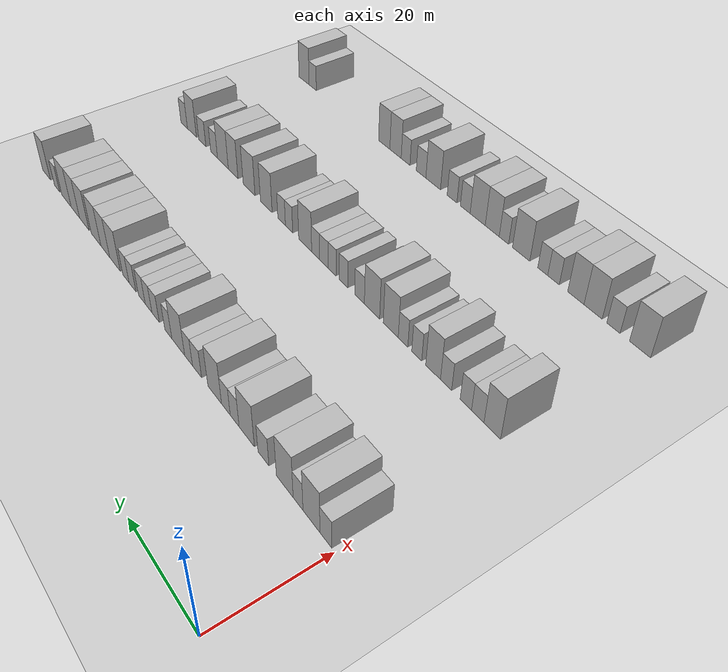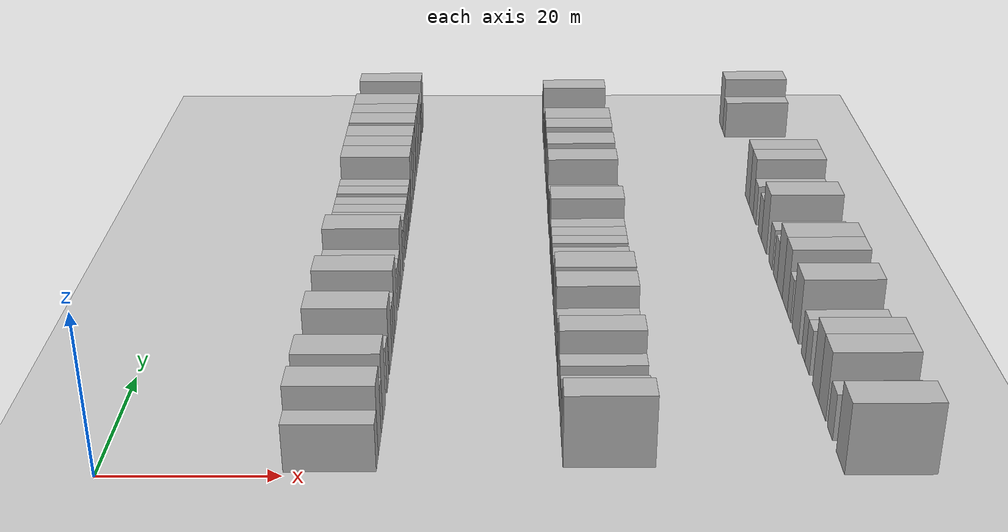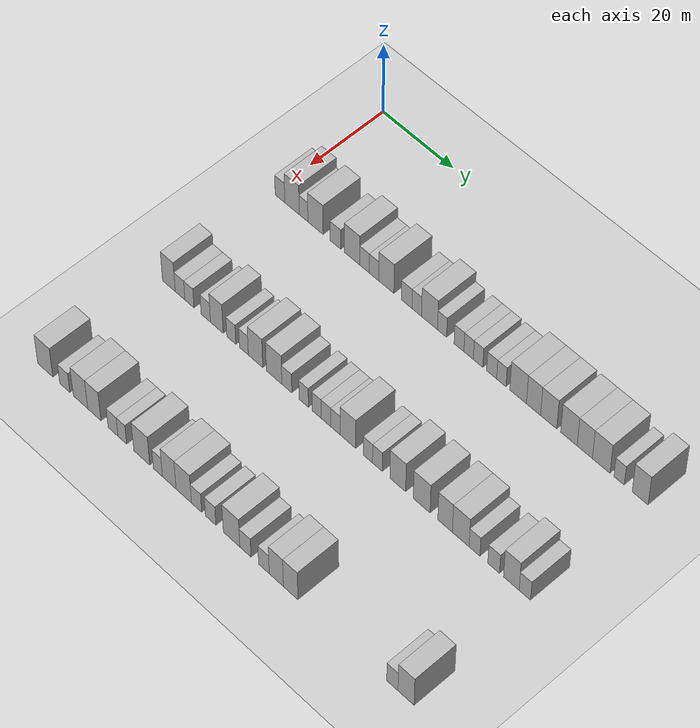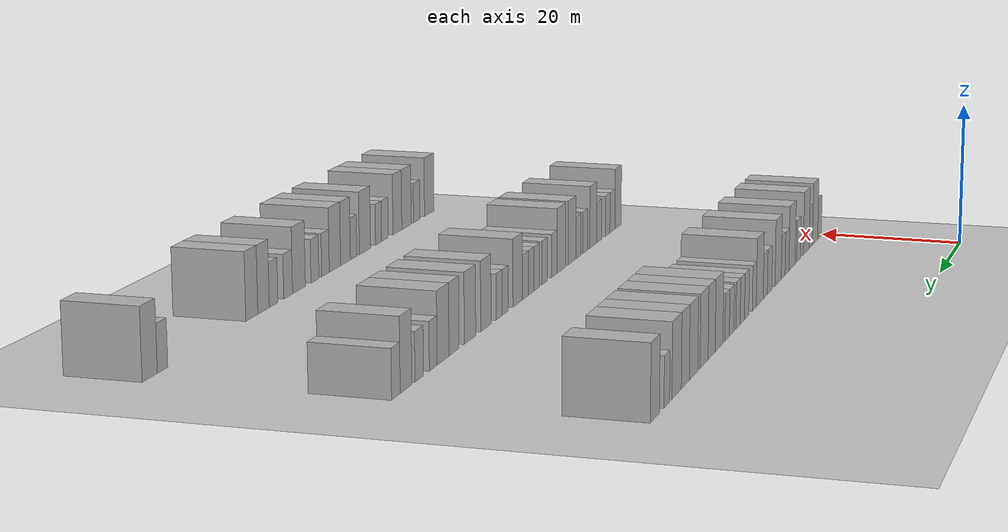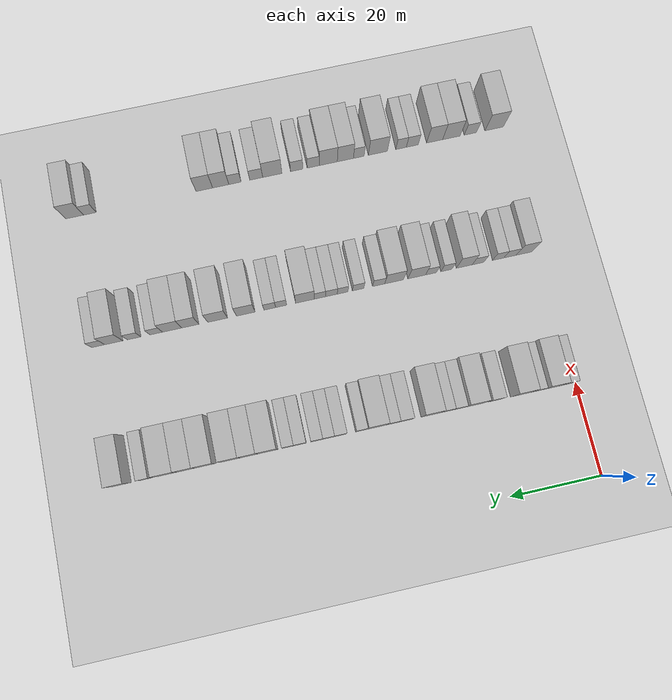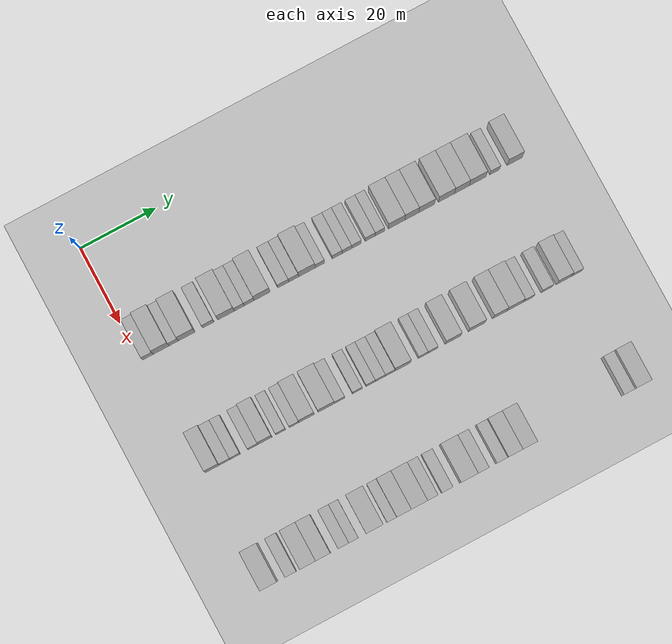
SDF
<sdf version="1.6">
 <world name="default">
  <include>
   <name>ground_plane_2</name>
   <uri>model://HANNAS_ground_plane</uri>
   <pose>100 0 0  0 0 0</pose>
  </include>
  <model name="building_71">
   <static>1</static>
   <pose>25.0000 2.1148 0 0.000000 0.000000 0.000000</pose>
   <link name="link">
    <pose>0 0 3.00 0 0 0</pose>
    <collision name="collision"><geometry><box><size>10.0000 2.8006 6.0000</size></box></geometry></collision>
    <visual name="visual">
     <cast_shadows>0</cast_shadows>
     <geometry><box><size>10.0000 2.8006 6.0000</size></box></geometry>
     <material>
      <script>
       <uri>model://HANNAS_wall/materials/scripts</uri>
       <uri>model://HANNAS_wall/materials/textures</uri>
       <name>vrc/HANNAS_wall</name>
      </script>
     </material>
    </visual>
   </link>
  </model>
  <model name="building_72">
   <static>1</static>
   <pose>25.0000 5.5817 0 0.000000 0.000000 0.000000</pose>
   <link name="link">
    <pose>0 0 4.50 0 0 0</pose>
    <collision name="collision"><geometry><box><size>10.0000 4.1332 9.0000</size></box></geometry></collision>
    <visual name="visual">
     <cast_shadows>0</cast_shadows>
     <geometry><box><size>10.0000 4.1332 9.0000</size></box></geometry>
     <material>
      <script>
       <uri>model://HANNAS_wall/materials/scripts</uri>
       <uri>model://HANNAS_wall/materials/textures</uri>
       <name>vrc/HANNAS_wall</name>
      </script>
     </material>
    </visual>
   </link>
  </model>
  <model name="building_73">
   <static>1</static>
   <pose>25.0000 8.8795 0 0.000000 0.000000 0.000000</pose>
   <link name="link">
    <pose>0 0 3.00 0 0 0</pose>
    <collision name="collision"><geometry><box><size>10.0000 2.4625 6.0000</size></box></geometry></collision>
    <visual name="visual">
     <cast_shadows>0</cast_shadows>
     <geometry><box><size>10.0000 2.4625 6.0000</size></box></geometry>
     <material>
      <script>
       <uri>model://HANNAS_wall/materials/scripts</uri>
       <uri>model://HANNAS_wall/materials/textures</uri>
       <name>vrc/HANNAS_wall</name>
      </script>
     </material>
    </visual>
   </link>
  </model>
  <model name="building_74">
   <static>1</static>
   <pose>25.0000 12.2830 0 0.000000 0.000000 0.000000</pose>
   <link name="link">
    <pose>0 0 4.50 0 0 0</pose>
    <collision name="collision"><geometry><box><size>10.0000 4.3445 9.0000</size></box></geometry></collision>
    <visual name="visual">
     <cast_shadows>0</cast_shadows>
     <geometry><box><size>10.0000 4.3445 9.0000</size></box></geometry>
     <material>
      <script>
       <uri>model://HANNAS_wall/materials/scripts</uri>
       <uri>model://HANNAS_wall/materials/textures</uri>
       <name>vrc/HANNAS_wall</name>
      </script>
     </material>
    </visual>
   </link>
  </model>
  <model name="building_75">
   <static>1</static>
   <pose>25.0000 17.9424 0 0.000000 0.000000 0.000000</pose>
   <link name="link">
    <pose>0 0 3.00 0 0 0</pose>
    <collision name="collision"><geometry><box><size>10.0000 2.9744 6.0000</size></box></geometry></collision>
    <visual name="visual">
     <cast_shadows>0</cast_shadows>
     <geometry><box><size>10.0000 2.9744 6.0000</size></box></geometry>
     <material>
      <script>
       <uri>model://HANNAS_wall/materials/scripts</uri>
       <uri>model://HANNAS_wall/materials/textures</uri>
       <name>vrc/HANNAS_wall</name>
      </script>
     </material>
    </visual>
   </link>
  </model>
  <model name="building_76">
   <static>1</static>
   <pose>25.0000 22.6018 0 0.000000 0.000000 0.000000</pose>
   <link name="link">
    <pose>0 0 4.50 0 0 0</pose>
    <collision name="collision"><geometry><box><size>10.0000 4.3443 9.0000</size></box></geometry></collision>
    <visual name="visual">
     <cast_shadows>0</cast_shadows>
     <geometry><box><size>10.0000 4.3443 9.0000</size></box></geometry>
     <material>
      <script>
       <uri>model://HANNAS_wall/materials/scripts</uri>
       <uri>model://HANNAS_wall/materials/textures</uri>
       <name>vrc/HANNAS_wall</name>
      </script>
     </material>
    </visual>
   </link>
  </model>
  <model name="building_77">
   <static>1</static>
   <pose>25.0000 26.0781 0 0.000000 0.000000 0.000000</pose>
   <link name="link">
    <pose>0 0 3.00 0 0 0</pose>
    <collision name="collision"><geometry><box><size>10.0000 2.6084 6.0000</size></box></geometry></collision>
    <visual name="visual">
     <cast_shadows>0</cast_shadows>
     <geometry><box><size>10.0000 2.6084 6.0000</size></box></geometry>
     <material>
      <script>
       <uri>model://HANNAS_wall/materials/scripts</uri>
       <uri>model://HANNAS_wall/materials/textures</uri>
       <name>vrc/HANNAS_wall</name>
      </script>
     </material>
    </visual>
   </link>
  </model>
  <model name="building_78">
   <static>1</static>
   <pose>25.0000 28.6798 0 0.000000 0.000000 0.000000</pose>
   <link name="link">
    <pose>0 0 3.00 0 0 0</pose>
    <collision name="collision"><geometry><box><size>10.0000 2.5950 6.0000</size></box></geometry></collision>
    <visual name="visual">
     <cast_shadows>0</cast_shadows>
     <geometry><box><size>10.0000 2.5950 6.0000</size></box></geometry>
     <material>
      <script>
       <uri>model://HANNAS_wall/materials/scripts</uri>
       <uri>model://HANNAS_wall/materials/textures</uri>
       <name>vrc/HANNAS_wall</name>
      </script>
     </material>
    </visual>
   </link>
  </model>
  <model name="building_79">
   <static>1</static>
   <pose>25.0000 32.0917 0 0.000000 0.000000 0.000000</pose>
   <link name="link">
    <pose>0 0 4.50 0 0 0</pose>
    <collision name="collision"><geometry><box><size>10.0000 4.2287 9.0000</size></box></geometry></collision>
    <visual name="visual">
     <cast_shadows>0</cast_shadows>
     <geometry><box><size>10.0000 4.2287 9.0000</size></box></geometry>
     <material>
      <script>
       <uri>model://HANNAS_wall/materials/scripts</uri>
       <uri>model://HANNAS_wall/materials/textures</uri>
       <name>vrc/HANNAS_wall</name>
      </script>
     </material>
    </visual>
   </link>
  </model>
  <model name="building_80">
   <static>1</static>
   <pose>25.0000 37.6726 0 0.000000 0.000000 0.000000</pose>
   <link name="link">
    <pose>0 0 3.00 0 0 0</pose>
    <collision name="collision"><geometry><box><size>10.0000 2.9331 6.0000</size></box></geometry></collision>
    <visual name="visual">
     <cast_shadows>0</cast_shadows>
     <geometry><box><size>10.0000 2.9331 6.0000</size></box></geometry>
     <material>
      <script>
       <uri>model://HANNAS_wall/materials/scripts</uri>
       <uri>model://HANNAS_wall/materials/textures</uri>
       <name>vrc/HANNAS_wall</name>
      </script>
     </material>
    </visual>
   </link>
  </model>
  <model name="building_81">
   <static>1</static>
   <pose>25.0000 40.4346 0 0.000000 0.000000 0.000000</pose>
   <link name="link">
    <pose>0 0 3.00 0 0 0</pose>
    <collision name="collision"><geometry><box><size>10.0000 2.5910 6.0000</size></box></geometry></collision>
    <visual name="visual">
     <cast_shadows>0</cast_shadows>
     <geometry><box><size>10.0000 2.5910 6.0000</size></box></geometry>
     <material>
      <script>
       <uri>model://HANNAS_wall/materials/scripts</uri>
       <uri>model://HANNAS_wall/materials/textures</uri>
       <name>vrc/HANNAS_wall</name>
      </script>
     </material>
    </visual>
   </link>
  </model>
  <model name="building_82">
   <static>1</static>
   <pose>25.0000 43.9173 0 0.000000 0.000000 0.000000</pose>
   <link name="link">
    <pose>0 0 4.50 0 0 0</pose>
    <collision name="collision"><geometry><box><size>10.0000 4.3743 9.0000</size></box></geometry></collision>
    <visual name="visual">
     <cast_shadows>0</cast_shadows>
     <geometry><box><size>10.0000 4.3743 9.0000</size></box></geometry>
     <material>
      <script>
       <uri>model://HANNAS_wall/materials/scripts</uri>
       <uri>model://HANNAS_wall/materials/textures</uri>
       <name>vrc/HANNAS_wall</name>
      </script>
     </material>
    </visual>
   </link>
  </model>
  <model name="building_83">
   <static>1</static>
   <pose>25.0000 47.3376 0 0.000000 0.000000 0.000000</pose>
   <link name="link">
    <pose>0 0 3.00 0 0 0</pose>
    <collision name="collision"><geometry><box><size>10.0000 2.4662 6.0000</size></box></geometry></collision>
    <visual name="visual">
     <cast_shadows>0</cast_shadows>
     <geometry><box><size>10.0000 2.4662 6.0000</size></box></geometry>
     <material>
      <script>
       <uri>model://HANNAS_wall/materials/scripts</uri>
       <uri>model://HANNAS_wall/materials/textures</uri>
       <name>vrc/HANNAS_wall</name>
      </script>
     </material>
    </visual>
   </link>
  </model>
  <model name="building_84">
   <static>1</static>
   <pose>25.0000 51.9042 0 0.000000 0.000000 0.000000</pose>
   <link name="link">
    <pose>0 0 3.00 0 0 0</pose>
    <collision name="collision"><geometry><box><size>10.0000 2.6670 6.0000</size></box></geometry></collision>
    <visual name="visual">
     <cast_shadows>0</cast_shadows>
     <geometry><box><size>10.0000 2.6670 6.0000</size></box></geometry>
     <material>
      <script>
       <uri>model://HANNAS_wall/materials/scripts</uri>
       <uri>model://HANNAS_wall/materials/textures</uri>
       <name>vrc/HANNAS_wall</name>
      </script>
     </material>
    </visual>
   </link>
  </model>
  <model name="building_85">
   <static>1</static>
   <pose>25.0000 54.4840 0 0.000000 0.000000 0.000000</pose>
   <link name="link">
    <pose>0 0 3.00 0 0 0</pose>
    <collision name="collision"><geometry><box><size>10.0000 2.4926 6.0000</size></box></geometry></collision>
    <visual name="visual">
     <cast_shadows>0</cast_shadows>
     <geometry><box><size>10.0000 2.4926 6.0000</size></box></geometry>
     <material>
      <script>
       <uri>model://HANNAS_wall/materials/scripts</uri>
       <uri>model://HANNAS_wall/materials/textures</uri>
       <name>vrc/HANNAS_wall</name>
      </script>
     </material>
    </visual>
   </link>
  </model>
  <model name="building_86">
   <static>1</static>
   <pose>25.0000 57.0016 0 0.000000 0.000000 0.000000</pose>
   <link name="link">
    <pose>0 0 3.00 0 0 0</pose>
    <collision name="collision"><geometry><box><size>10.0000 2.5426 6.0000</size></box></geometry></collision>
    <visual name="visual">
     <cast_shadows>0</cast_shadows>
     <geometry><box><size>10.0000 2.5426 6.0000</size></box></geometry>
     <material>
      <script>
       <uri>model://HANNAS_wall/materials/scripts</uri>
       <uri>model://HANNAS_wall/materials/textures</uri>
       <name>vrc/HANNAS_wall</name>
      </script>
     </material>
    </visual>
   </link>
  </model>
  <model name="building_87">
   <static>1</static>
   <pose>25.0000 60.6079 0 0.000000 0.000000 0.000000</pose>
   <link name="link">
    <pose>0 0 3.00 0 0 0</pose>
    <collision name="collision"><geometry><box><size>10.0000 2.6700 6.0000</size></box></geometry></collision>
    <visual name="visual">
     <cast_shadows>0</cast_shadows>
     <geometry><box><size>10.0000 2.6700 6.0000</size></box></geometry>
     <material>
      <script>
       <uri>model://HANNAS_wall/materials/scripts</uri>
       <uri>model://HANNAS_wall/materials/textures</uri>
       <name>vrc/HANNAS_wall</name>
      </script>
     </material>
    </visual>
   </link>
  </model>
  <model name="building_88">
   <static>1</static>
   <pose>25.0000 63.1815 0 0.000000 0.000000 0.000000</pose>
   <link name="link">
    <pose>0 0 3.00 0 0 0</pose>
    <collision name="collision"><geometry><box><size>10.0000 2.4772 6.0000</size></box></geometry></collision>
    <visual name="visual">
     <cast_shadows>0</cast_shadows>
     <geometry><box><size>10.0000 2.4772 6.0000</size></box></geometry>
     <material>
      <script>
       <uri>model://HANNAS_wall/materials/scripts</uri>
       <uri>model://HANNAS_wall/materials/textures</uri>
       <name>vrc/HANNAS_wall</name>
      </script>
     </material>
    </visual>
   </link>
  </model>
  <model name="building_89">
   <static>1</static>
   <pose>25.0000 67.5940 0 0.000000 0.000000 0.000000</pose>
   <link name="link">
    <pose>0 0 4.50 0 0 0</pose>
    <collision name="collision"><geometry><box><size>10.0000 4.3479 9.0000</size></box></geometry></collision>
    <visual name="visual">
     <cast_shadows>0</cast_shadows>
     <geometry><box><size>10.0000 4.3479 9.0000</size></box></geometry>
     <material>
      <script>
       <uri>model://HANNAS_wall/materials/scripts</uri>
       <uri>model://HANNAS_wall/materials/textures</uri>
       <name>vrc/HANNAS_wall</name>
      </script>
     </material>
    </visual>
   </link>
  </model>
  <model name="building_90">
   <static>1</static>
   <pose>25.0000 71.6233 0 0.000000 0.000000 0.000000</pose>
   <link name="link">
    <pose>0 0 4.50 0 0 0</pose>
    <collision name="collision"><geometry><box><size>10.0000 3.7107 9.0000</size></box></geometry></collision>
    <visual name="visual">
     <cast_shadows>0</cast_shadows>
     <geometry><box><size>10.0000 3.7107 9.0000</size></box></geometry>
     <material>
      <script>
       <uri>model://HANNAS_wall/materials/scripts</uri>
       <uri>model://HANNAS_wall/materials/textures</uri>
       <name>vrc/HANNAS_wall</name>
      </script>
     </material>
    </visual>
   </link>
  </model>
  <model name="building_91">
   <static>1</static>
   <pose>25.0000 75.5768 0 0.000000 0.000000 0.000000</pose>
   <link name="link">
    <pose>0 0 4.50 0 0 0</pose>
    <collision name="collision"><geometry><box><size>10.0000 4.1964 9.0000</size></box></geometry></collision>
    <visual name="visual">
     <cast_shadows>0</cast_shadows>
     <geometry><box><size>10.0000 4.1964 9.0000</size></box></geometry>
     <material>
      <script>
       <uri>model://HANNAS_wall/materials/scripts</uri>
       <uri>model://HANNAS_wall/materials/textures</uri>
       <name>vrc/HANNAS_wall</name>
      </script>
     </material>
    </visual>
   </link>
  </model>
  <model name="building_92">
   <static>1</static>
   <pose>25.0000 80.8063 0 0.000000 0.000000 0.000000</pose>
   <link name="link">
    <pose>0 0 4.50 0 0 0</pose>
    <collision name="collision"><geometry><box><size>10.0000 4.2625 9.0000</size></box></geometry></collision>
    <visual name="visual">
     <cast_shadows>0</cast_shadows>
     <geometry><box><size>10.0000 4.2625 9.0000</size></box></geometry>
     <material>
      <script>
       <uri>model://HANNAS_wall/materials/scripts</uri>
       <uri>model://HANNAS_wall/materials/textures</uri>
       <name>vrc/HANNAS_wall</name>
      </script>
     </material>
    </visual>
   </link>
  </model>
  <model name="building_93">
   <static>1</static>
   <pose>25.0000 84.8836 0 0.000000 0.000000 0.000000</pose>
   <link name="link">
    <pose>0 0 4.50 0 0 0</pose>
    <collision name="collision"><geometry><box><size>10.0000 3.8920 9.0000</size></box></geometry></collision>
    <visual name="visual">
     <cast_shadows>0</cast_shadows>
     <geometry><box><size>10.0000 3.8920 9.0000</size></box></geometry>
     <material>
      <script>
       <uri>model://HANNAS_wall/materials/scripts</uri>
       <uri>model://HANNAS_wall/materials/textures</uri>
       <name>vrc/HANNAS_wall</name>
      </script>
     </material>
    </visual>
   </link>
  </model>
  <model name="building_94">
   <static>1</static>
   <pose>25.0000 89.0736 0 0.000000 0.000000 0.000000</pose>
   <link name="link">
    <pose>0 0 4.50 0 0 0</pose>
    <collision name="collision"><geometry><box><size>10.0000 4.4882 9.0000</size></box></geometry></collision>
    <visual name="visual">
     <cast_shadows>0</cast_shadows>
     <geometry><box><size>10.0000 4.4882 9.0000</size></box></geometry>
     <material>
      <script>
       <uri>model://HANNAS_wall/materials/scripts</uri>
       <uri>model://HANNAS_wall/materials/textures</uri>
       <name>vrc/HANNAS_wall</name>
      </script>
     </material>
    </visual>
   </link>
  </model>
  <model name="building_95">
   <static>1</static>
   <pose>25.0000 93.6137 0 0.000000 0.000000 0.000000</pose>
   <link name="link">
    <pose>0 0 3.00 0 0 0</pose>
    <collision name="collision"><geometry><box><size>10.0000 2.5921 6.0000</size></box></geometry></collision>
    <visual name="visual">
     <cast_shadows>0</cast_shadows>
     <geometry><box><size>10.0000 2.5921 6.0000</size></box></geometry>
     <material>
      <script>
       <uri>model://HANNAS_wall/materials/scripts</uri>
       <uri>model://HANNAS_wall/materials/textures</uri>
       <name>vrc/HANNAS_wall</name>
      </script>
     </material>
    </visual>
   </link>
  </model>
  <model name="building_96">
   <static>1</static>
   <pose>25.0000 98.9158 0 0.000000 0.000000 0.000000</pose>
   <link name="link">
    <pose>0 0 4.50 0 0 0</pose>
    <collision name="collision"><geometry><box><size>10.0000 4.0121 9.0000</size></box></geometry></collision>
    <visual name="visual">
     <cast_shadows>0</cast_shadows>
     <geometry><box><size>10.0000 4.0121 9.0000</size></box></geometry>
     <material>
      <script>
       <uri>model://HANNAS_wall/materials/scripts</uri>
       <uri>model://HANNAS_wall/materials/textures</uri>
       <name>vrc/HANNAS_wall</name>
      </script>
     </material>
    </visual>
   </link>
  </model>
  <model name="building_216">
   <static>1</static>
   <pose>55.0000 3.1955 0 0.000000 0.000000 0.000000</pose>
   <link name="link">
    <pose>0 0 4.50 0 0 0</pose>
    <collision name="collision"><geometry><box><size>10.0000 3.6456 9.0000</size></box></geometry></collision>
    <visual name="visual">
     <cast_shadows>0</cast_shadows>
     <geometry><box><size>10.0000 3.6456 9.0000</size></box></geometry>
     <material>
      <script>
       <uri>model://HANNAS_wall/materials/scripts</uri>
       <uri>model://HANNAS_wall/materials/textures</uri>
       <name>vrc/HANNAS_wall</name>
      </script>
     </material>
    </visual>
   </link>
  </model>
  <model name="building_217">
   <static>1</static>
   <pose>55.0000 6.4200 0 0.000000 0.000000 0.000000</pose>
   <link name="link">
    <pose>0 0 3.00 0 0 0</pose>
    <collision name="collision"><geometry><box><size>10.0000 2.8036 6.0000</size></box></geometry></collision>
    <visual name="visual">
     <cast_shadows>0</cast_shadows>
     <geometry><box><size>10.0000 2.8036 6.0000</size></box></geometry>
     <material>
      <script>
       <uri>model://HANNAS_wall/materials/scripts</uri>
       <uri>model://HANNAS_wall/materials/textures</uri>
       <name>vrc/HANNAS_wall</name>
      </script>
     </material>
    </visual>
   </link>
  </model>
  <model name="building_218">
   <static>1</static>
   <pose>55.0000 9.1258 0 0.000000 0.000000 0.000000</pose>
   <link name="link">
    <pose>0 0 3.00 0 0 0</pose>
    <collision name="collision"><geometry><box><size>10.0000 2.6079 6.0000</size></box></geometry></collision>
    <visual name="visual">
     <cast_shadows>0</cast_shadows>
     <geometry><box><size>10.0000 2.6079 6.0000</size></box></geometry>
     <material>
      <script>
       <uri>model://HANNAS_wall/materials/scripts</uri>
       <uri>model://HANNAS_wall/materials/textures</uri>
       <name>vrc/HANNAS_wall</name>
      </script>
     </material>
    </visual>
   </link>
  </model>
  <model name="building_219">
   <static>1</static>
   <pose>55.0000 13.7623 0 0.000000 0.000000 0.000000</pose>
   <link name="link">
    <pose>0 0 3.00 0 0 0</pose>
    <collision name="collision"><geometry><box><size>10.0000 2.6653 6.0000</size></box></geometry></collision>
    <visual name="visual">
     <cast_shadows>0</cast_shadows>
     <geometry><box><size>10.0000 2.6653 6.0000</size></box></geometry>
     <material>
      <script>
       <uri>model://HANNAS_wall/materials/scripts</uri>
       <uri>model://HANNAS_wall/materials/textures</uri>
       <name>vrc/HANNAS_wall</name>
      </script>
     </material>
    </visual>
   </link>
  </model>
  <model name="building_220">
   <static>1</static>
   <pose>55.0000 16.9103 0 0.000000 0.000000 0.000000</pose>
   <link name="link">
    <pose>0 0 4.50 0 0 0</pose>
    <collision name="collision"><geometry><box><size>10.0000 3.6306 9.0000</size></box></geometry></collision>
    <visual name="visual">
     <cast_shadows>0</cast_shadows>
     <geometry><box><size>10.0000 3.6306 9.0000</size></box></geometry>
     <material>
      <script>
       <uri>model://HANNAS_wall/materials/scripts</uri>
       <uri>model://HANNAS_wall/materials/textures</uri>
       <name>vrc/HANNAS_wall</name>
      </script>
     </material>
    </visual>
   </link>
  </model>
  <model name="building_221">
   <static>1</static>
   <pose>55.0000 20.9963 0 0.000000 0.000000 0.000000</pose>
   <link name="link">
    <pose>0 0 3.00 0 0 0</pose>
    <collision name="collision"><geometry><box><size>10.0000 2.5415 6.0000</size></box></geometry></collision>
    <visual name="visual">
     <cast_shadows>0</cast_shadows>
     <geometry><box><size>10.0000 2.5415 6.0000</size></box></geometry>
     <material>
      <script>
       <uri>model://HANNAS_wall/materials/scripts</uri>
       <uri>model://HANNAS_wall/materials/textures</uri>
       <name>vrc/HANNAS_wall</name>
      </script>
     </material>
    </visual>
   </link>
  </model>
  <model name="building_222">
   <static>1</static>
   <pose>55.0000 24.5210 0 0.000000 0.000000 0.000000</pose>
   <link name="link">
    <pose>0 0 3.00 0 0 0</pose>
    <collision name="collision"><geometry><box><size>10.0000 2.5078 6.0000</size></box></geometry></collision>
    <visual name="visual">
     <cast_shadows>0</cast_shadows>
     <geometry><box><size>10.0000 2.5078 6.0000</size></box></geometry>
     <material>
      <script>
       <uri>model://HANNAS_wall/materials/scripts</uri>
       <uri>model://HANNAS_wall/materials/textures</uri>
       <name>vrc/HANNAS_wall</name>
      </script>
     </material>
    </visual>
   </link>
  </model>
  <model name="building_223">
   <static>1</static>
   <pose>55.0000 27.7870 0 0.000000 0.000000 0.000000</pose>
   <link name="link">
    <pose>0 0 4.50 0 0 0</pose>
    <collision name="collision"><geometry><box><size>10.0000 4.0242 9.0000</size></box></geometry></collision>
    <visual name="visual">
     <cast_shadows>0</cast_shadows>
     <geometry><box><size>10.0000 4.0242 9.0000</size></box></geometry>
     <material>
      <script>
       <uri>model://HANNAS_wall/materials/scripts</uri>
       <uri>model://HANNAS_wall/materials/textures</uri>
       <name>vrc/HANNAS_wall</name>
      </script>
     </material>
    </visual>
   </link>
  </model>
  <model name="building_224">
   <static>1</static>
   <pose>55.0000 32.9271 0 0.000000 0.000000 0.000000</pose>
   <link name="link">
    <pose>0 0 4.50 0 0 0</pose>
    <collision name="collision"><geometry><box><size>10.0000 4.2560 9.0000</size></box></geometry></collision>
    <visual name="visual">
     <cast_shadows>0</cast_shadows>
     <geometry><box><size>10.0000 4.2560 9.0000</size></box></geometry>
     <material>
      <script>
       <uri>model://HANNAS_wall/materials/scripts</uri>
       <uri>model://HANNAS_wall/materials/textures</uri>
       <name>vrc/HANNAS_wall</name>
      </script>
     </material>
    </visual>
   </link>
  </model>
  <model name="building_225">
   <static>1</static>
   <pose>55.0000 36.4293 0 0.000000 0.000000 0.000000</pose>
   <link name="link">
    <pose>0 0 3.00 0 0 0</pose>
    <collision name="collision"><geometry><box><size>10.0000 2.7485 6.0000</size></box></geometry></collision>
    <visual name="visual">
     <cast_shadows>0</cast_shadows>
     <geometry><box><size>10.0000 2.7485 6.0000</size></box></geometry>
     <material>
      <script>
       <uri>model://HANNAS_wall/materials/scripts</uri>
       <uri>model://HANNAS_wall/materials/textures</uri>
       <name>vrc/HANNAS_wall</name>
      </script>
     </material>
    </visual>
   </link>
  </model>
  <model name="building_226">
   <static>1</static>
   <pose>55.0000 41.0884 0 0.000000 0.000000 0.000000</pose>
   <link name="link">
    <pose>0 0 3.00 0 0 0</pose>
    <collision name="collision"><geometry><box><size>10.0000 2.5697 6.0000</size></box></geometry></collision>
    <visual name="visual">
     <cast_shadows>0</cast_shadows>
     <geometry><box><size>10.0000 2.5697 6.0000</size></box></geometry>
     <material>
      <script>
       <uri>model://HANNAS_wall/materials/scripts</uri>
       <uri>model://HANNAS_wall/materials/textures</uri>
       <name>vrc/HANNAS_wall</name>
      </script>
     </material>
    </visual>
   </link>
  </model>
  <model name="building_227">
   <static>1</static>
   <pose>55.0000 44.5845 0 0.000000 0.000000 0.000000</pose>
   <link name="link">
    <pose>0 0 3.00 0 0 0</pose>
    <collision name="collision"><geometry><box><size>10.0000 2.4224 6.0000</size></box></geometry></collision>
    <visual name="visual">
     <cast_shadows>0</cast_shadows>
     <geometry><box><size>10.0000 2.4224 6.0000</size></box></geometry>
     <material>
      <script>
       <uri>model://HANNAS_wall/materials/scripts</uri>
       <uri>model://HANNAS_wall/materials/textures</uri>
       <name>vrc/HANNAS_wall</name>
      </script>
     </material>
    </visual>
   </link>
  </model>
  <model name="building_228">
   <static>1</static>
   <pose>55.0000 47.1179 0 0.000000 0.000000 0.000000</pose>
   <link name="link">
    <pose>0 0 3.00 0 0 0</pose>
    <collision name="collision"><geometry><box><size>10.0000 2.6445 6.0000</size></box></geometry></collision>
    <visual name="visual">
     <cast_shadows>0</cast_shadows>
     <geometry><box><size>10.0000 2.6445 6.0000</size></box></geometry>
     <material>
      <script>
       <uri>model://HANNAS_wall/materials/scripts</uri>
       <uri>model://HANNAS_wall/materials/textures</uri>
       <name>vrc/HANNAS_wall</name>
      </script>
     </material>
    </visual>
   </link>
  </model>
  <model name="building_229">
   <static>1</static>
   <pose>55.0000 49.6965 0 0.000000 0.000000 0.000000</pose>
   <link name="link">
    <pose>0 0 3.00 0 0 0</pose>
    <collision name="collision"><geometry><box><size>10.0000 2.5126 6.0000</size></box></geometry></collision>
    <visual name="visual">
     <cast_shadows>0</cast_shadows>
     <geometry><box><size>10.0000 2.5126 6.0000</size></box></geometry>
     <material>
      <script>
       <uri>model://HANNAS_wall/materials/scripts</uri>
       <uri>model://HANNAS_wall/materials/textures</uri>
       <name>vrc/HANNAS_wall</name>
      </script>
     </material>
    </visual>
   </link>
  </model>
  <model name="building_230">
   <static>1</static>
   <pose>55.0000 53.0548 0 0.000000 0.000000 0.000000</pose>
   <link name="link">
    <pose>0 0 4.50 0 0 0</pose>
    <collision name="collision"><geometry><box><size>10.0000 4.2041 9.0000</size></box></geometry></collision>
    <visual name="visual">
     <cast_shadows>0</cast_shadows>
     <geometry><box><size>10.0000 4.2041 9.0000</size></box></geometry>
     <material>
      <script>
       <uri>model://HANNAS_wall/materials/scripts</uri>
       <uri>model://HANNAS_wall/materials/textures</uri>
       <name>vrc/HANNAS_wall</name>
      </script>
     </material>
    </visual>
   </link>
  </model>
  <model name="building_231">
   <static>1</static>
   <pose>55.0000 58.3899 0 0.000000 0.000000 0.000000</pose>
   <link name="link">
    <pose>0 0 3.00 0 0 0</pose>
    <collision name="collision"><geometry><box><size>10.0000 2.4661 6.0000</size></box></geometry></collision>
    <visual name="visual">
     <cast_shadows>0</cast_shadows>
     <geometry><box><size>10.0000 2.4661 6.0000</size></box></geometry>
     <material>
      <script>
       <uri>model://HANNAS_wall/materials/scripts</uri>
       <uri>model://HANNAS_wall/materials/textures</uri>
       <name>vrc/HANNAS_wall</name>
      </script>
     </material>
    </visual>
   </link>
  </model>
  <model name="building_232">
   <static>1</static>
   <pose>55.0000 60.9281 0 0.000000 0.000000 0.000000</pose>
   <link name="link">
    <pose>0 0 3.00 0 0 0</pose>
    <collision name="collision"><geometry><box><size>10.0000 2.6103 6.0000</size></box></geometry></collision>
    <visual name="visual">
     <cast_shadows>0</cast_shadows>
     <geometry><box><size>10.0000 2.6103 6.0000</size></box></geometry>
     <material>
      <script>
       <uri>model://HANNAS_wall/materials/scripts</uri>
       <uri>model://HANNAS_wall/materials/textures</uri>
       <name>vrc/HANNAS_wall</name>
      </script>
     </material>
    </visual>
   </link>
  </model>
  <model name="building_233">
   <static>1</static>
   <pose>55.0000 66.3065 0 0.000000 0.000000 0.000000</pose>
   <link name="link">
    <pose>0 0 4.50 0 0 0</pose>
    <collision name="collision"><geometry><box><size>10.0000 4.1464 9.0000</size></box></geometry></collision>
    <visual name="visual">
     <cast_shadows>0</cast_shadows>
     <geometry><box><size>10.0000 4.1464 9.0000</size></box></geometry>
     <material>
      <script>
       <uri>model://HANNAS_wall/materials/scripts</uri>
       <uri>model://HANNAS_wall/materials/textures</uri>
       <name>vrc/HANNAS_wall</name>
      </script>
     </material>
    </visual>
   </link>
  </model>
  <model name="building_234">
   <static>1</static>
   <pose>55.0000 72.5756 0 0.000000 0.000000 0.000000</pose>
   <link name="link">
    <pose>0 0 4.50 0 0 0</pose>
    <collision name="collision"><geometry><box><size>10.0000 4.3918 9.0000</size></box></geometry></collision>
    <visual name="visual">
     <cast_shadows>0</cast_shadows>
     <geometry><box><size>10.0000 4.3918 9.0000</size></box></geometry>
     <material>
      <script>
       <uri>model://HANNAS_wall/materials/scripts</uri>
       <uri>model://HANNAS_wall/materials/textures</uri>
       <name>vrc/HANNAS_wall</name>
      </script>
     </material>
    </visual>
   </link>
  </model>
  <model name="building_235">
   <static>1</static>
   <pose>55.0000 78.6493 0 0.000000 0.000000 0.000000</pose>
   <link name="link">
    <pose>0 0 4.50 0 0 0</pose>
    <collision name="collision"><geometry><box><size>10.0000 3.7555 9.0000</size></box></geometry></collision>
    <visual name="visual">
     <cast_shadows>0</cast_shadows>
     <geometry><box><size>10.0000 3.7555 9.0000</size></box></geometry>
     <material>
      <script>
       <uri>model://HANNAS_wall/materials/scripts</uri>
       <uri>model://HANNAS_wall/materials/textures</uri>
       <name>vrc/HANNAS_wall</name>
      </script>
     </material>
    </visual>
   </link>
  </model>
  <model name="building_236">
   <static>1</static>
   <pose>55.0000 82.6828 0 0.000000 0.000000 0.000000</pose>
   <link name="link">
    <pose>0 0 4.50 0 0 0</pose>
    <collision name="collision"><geometry><box><size>10.0000 4.3116 9.0000</size></box></geometry></collision>
    <visual name="visual">
     <cast_shadows>0</cast_shadows>
     <geometry><box><size>10.0000 4.3116 9.0000</size></box></geometry>
     <material>
      <script>
       <uri>model://HANNAS_wall/materials/scripts</uri>
       <uri>model://HANNAS_wall/materials/textures</uri>
       <name>vrc/HANNAS_wall</name>
      </script>
     </material>
    </visual>
   </link>
  </model>
  <model name="building_237">
   <static>1</static>
   <pose>55.0000 86.2237 0 0.000000 0.000000 0.000000</pose>
   <link name="link">
    <pose>0 0 3.00 0 0 0</pose>
    <collision name="collision"><geometry><box><size>10.0000 2.7701 6.0000</size></box></geometry></collision>
    <visual name="visual">
     <cast_shadows>0</cast_shadows>
     <geometry><box><size>10.0000 2.7701 6.0000</size></box></geometry>
     <material>
      <script>
       <uri>model://HANNAS_wall/materials/scripts</uri>
       <uri>model://HANNAS_wall/materials/textures</uri>
       <name>vrc/HANNAS_wall</name>
      </script>
     </material>
    </visual>
   </link>
  </model>
  <model name="building_238">
   <static>1</static>
   <pose>55.0000 91.1015 0 0.000000 0.000000 0.000000</pose>
   <link name="link">
    <pose>0 0 3.00 0 0 0</pose>
    <collision name="collision"><geometry><box><size>10.0000 2.9854 6.0000</size></box></geometry></collision>
    <visual name="visual">
     <cast_shadows>0</cast_shadows>
     <geometry><box><size>10.0000 2.9854 6.0000</size></box></geometry>
     <material>
      <script>
       <uri>model://HANNAS_wall/materials/scripts</uri>
       <uri>model://HANNAS_wall/materials/textures</uri>
       <name>vrc/HANNAS_wall</name>
      </script>
     </material>
    </visual>
   </link>
  </model>
  <model name="building_239">
   <static>1</static>
   <pose>55.0000 95.5578 0 0.000000 0.000000 0.000000</pose>
   <link name="link">
    <pose>0 0 4.50 0 0 0</pose>
    <collision name="collision"><geometry><box><size>10.0000 3.9273 9.0000</size></box></geometry></collision>
    <visual name="visual">
     <cast_shadows>0</cast_shadows>
     <geometry><box><size>10.0000 3.9273 9.0000</size></box></geometry>
     <material>
      <script>
       <uri>model://HANNAS_wall/materials/scripts</uri>
       <uri>model://HANNAS_wall/materials/textures</uri>
       <name>vrc/HANNAS_wall</name>
      </script>
     </material>
    </visual>
   </link>
  </model>
  <model name="building_240">
   <static>1</static>
   <pose>55.0000 98.9516 0 0.000000 0.000000 0.000000</pose>
   <link name="link">
    <pose>0 0 3.00 0 0 0</pose>
    <collision name="collision"><geometry><box><size>10.0000 2.8602 6.0000</size></box></geometry></collision>
    <visual name="visual">
     <cast_shadows>0</cast_shadows>
     <geometry><box><size>10.0000 2.8602 6.0000</size></box></geometry>
     <material>
      <script>
       <uri>model://HANNAS_wall/materials/scripts</uri>
       <uri>model://HANNAS_wall/materials/textures</uri>
       <name>vrc/HANNAS_wall</name>
      </script>
     </material>
    </visual>
   </link>
  </model>
  <model name="building_357">
   <static>1</static>
   <pose>85.0000 2.0510 0 0.000000 0.000000 0.000000</pose>
   <link name="link">
    <pose>0 0 4.50 0 0 0</pose>
    <collision name="collision"><geometry><box><size>10.0000 4.3957 9.0000</size></box></geometry></collision>
    <visual name="visual">
     <cast_shadows>0</cast_shadows>
     <geometry><box><size>10.0000 4.3957 9.0000</size></box></geometry>
     <material>
      <script>
       <uri>model://HANNAS_wall/materials/scripts</uri>
       <uri>model://HANNAS_wall/materials/textures</uri>
       <name>vrc/HANNAS_wall</name>
      </script>
     </material>
    </visual>
   </link>
  </model>
  <model name="building_358">
   <static>1</static>
   <pose>85.0000 7.6959 0 0.000000 0.000000 0.000000</pose>
   <link name="link">
    <pose>0 0 3.00 0 0 0</pose>
    <collision name="collision"><geometry><box><size>10.0000 2.8940 6.0000</size></box></geometry></collision>
    <visual name="visual">
     <cast_shadows>0</cast_shadows>
     <geometry><box><size>10.0000 2.8940 6.0000</size></box></geometry>
     <material>
      <script>
       <uri>model://HANNAS_wall/materials/scripts</uri>
       <uri>model://HANNAS_wall/materials/textures</uri>
       <name>vrc/HANNAS_wall</name>
      </script>
     </material>
    </visual>
   </link>
  </model>
  <model name="building_359">
   <static>1</static>
   <pose>85.0000 12.1966 0 0.000000 0.000000 0.000000</pose>
   <link name="link">
    <pose>0 0 4.50 0 0 0</pose>
    <collision name="collision"><geometry><box><size>10.0000 4.1074 9.0000</size></box></geometry></collision>
    <visual name="visual">
     <cast_shadows>0</cast_shadows>
     <geometry><box><size>10.0000 4.1074 9.0000</size></box></geometry>
     <material>
      <script>
       <uri>model://HANNAS_wall/materials/scripts</uri>
       <uri>model://HANNAS_wall/materials/textures</uri>
       <name>vrc/HANNAS_wall</name>
      </script>
     </material>
    </visual>
   </link>
  </model>
  <model name="building_360">
   <static>1</static>
   <pose>85.0000 16.1413 0 0.000000 0.000000 0.000000</pose>
   <link name="link">
    <pose>0 0 4.50 0 0 0</pose>
    <collision name="collision"><geometry><box><size>10.0000 3.7820 9.0000</size></box></geometry></collision>
    <visual name="visual">
     <cast_shadows>0</cast_shadows>
     <geometry><box><size>10.0000 3.7820 9.0000</size></box></geometry>
     <material>
      <script>
       <uri>model://HANNAS_wall/materials/scripts</uri>
       <uri>model://HANNAS_wall/materials/textures</uri>
       <name>vrc/HANNAS_wall</name>
      </script>
     </material>
    </visual>
   </link>
  </model>
  <model name="building_361">
   <static>1</static>
   <pose>85.0000 21.4293 0 0.000000 0.000000 0.000000</pose>
   <link name="link">
    <pose>0 0 3.00 0 0 0</pose>
    <collision name="collision"><geometry><box><size>10.0000 2.7940 6.0000</size></box></geometry></collision>
    <visual name="visual">
     <cast_shadows>0</cast_shadows>
     <geometry><box><size>10.0000 2.7940 6.0000</size></box></geometry>
     <material>
      <script>
       <uri>model://HANNAS_wall/materials/scripts</uri>
       <uri>model://HANNAS_wall/materials/textures</uri>
       <name>vrc/HANNAS_wall</name>
      </script>
     </material>
    </visual>
   </link>
  </model>
  <model name="building_362">
   <static>1</static>
   <pose>85.0000 24.0530 0 0.000000 0.000000 0.000000</pose>
   <link name="link">
    <pose>0 0 3.00 0 0 0</pose>
    <collision name="collision"><geometry><box><size>10.0000 2.4533 6.0000</size></box></geometry></collision>
    <visual name="visual">
     <cast_shadows>0</cast_shadows>
     <geometry><box><size>10.0000 2.4533 6.0000</size></box></geometry>
     <material>
      <script>
       <uri>model://HANNAS_wall/materials/scripts</uri>
       <uri>model://HANNAS_wall/materials/textures</uri>
       <name>vrc/HANNAS_wall</name>
      </script>
     </material>
    </visual>
   </link>
  </model>
  <model name="building_363">
   <static>1</static>
   <pose>85.0000 29.5071 0 0.000000 0.000000 0.000000</pose>
   <link name="link">
    <pose>0 0 4.50 0 0 0</pose>
    <collision name="collision"><geometry><box><size>10.0000 4.4549 9.0000</size></box></geometry></collision>
    <visual name="visual">
     <cast_shadows>0</cast_shadows>
     <geometry><box><size>10.0000 4.4549 9.0000</size></box></geometry>
     <material>
      <script>
       <uri>model://HANNAS_wall/materials/scripts</uri>
       <uri>model://HANNAS_wall/materials/textures</uri>
       <name>vrc/HANNAS_wall</name>
      </script>
     </material>
    </visual>
   </link>
  </model>
  <model name="building_364">
   <static>1</static>
   <pose>85.0000 33.9824 0 0.000000 0.000000 0.000000</pose>
   <link name="link">
    <pose>0 0 3.00 0 0 0</pose>
    <collision name="collision"><geometry><box><size>10.0000 2.4958 6.0000</size></box></geometry></collision>
    <visual name="visual">
     <cast_shadows>0</cast_shadows>
     <geometry><box><size>10.0000 2.4958 6.0000</size></box></geometry>
     <material>
      <script>
       <uri>model://HANNAS_wall/materials/scripts</uri>
       <uri>model://HANNAS_wall/materials/textures</uri>
       <name>vrc/HANNAS_wall</name>
      </script>
     </material>
    </visual>
   </link>
  </model>
  <model name="building_365">
   <static>1</static>
   <pose>85.0000 37.1182 0 0.000000 0.000000 0.000000</pose>
   <link name="link">
    <pose>0 0 4.50 0 0 0</pose>
    <collision name="collision"><geometry><box><size>10.0000 3.7759 9.0000</size></box></geometry></collision>
    <visual name="visual">
     <cast_shadows>0</cast_shadows>
     <geometry><box><size>10.0000 3.7759 9.0000</size></box></geometry>
     <material>
      <script>
       <uri>model://HANNAS_wall/materials/scripts</uri>
       <uri>model://HANNAS_wall/materials/textures</uri>
       <name>vrc/HANNAS_wall</name>
      </script>
     </material>
    </visual>
   </link>
  </model>
  <model name="building_366">
   <static>1</static>
   <pose>85.0000 41.1170 0 0.000000 0.000000 0.000000</pose>
   <link name="link">
    <pose>0 0 4.50 0 0 0</pose>
    <collision name="collision"><geometry><box><size>10.0000 4.2217 9.0000</size></box></geometry></collision>
    <visual name="visual">
     <cast_shadows>0</cast_shadows>
     <geometry><box><size>10.0000 4.2217 9.0000</size></box></geometry>
     <material>
      <script>
       <uri>model://HANNAS_wall/materials/scripts</uri>
       <uri>model://HANNAS_wall/materials/textures</uri>
       <name>vrc/HANNAS_wall</name>
      </script>
     </material>
    </visual>
   </link>
  </model>
  <model name="building_367">
   <static>1</static>
   <pose>85.0000 44.6250 0 0.000000 0.000000 0.000000</pose>
   <link name="link">
    <pose>0 0 3.00 0 0 0</pose>
    <collision name="collision"><geometry><box><size>10.0000 2.7942 6.0000</size></box></geometry></collision>
    <visual name="visual">
     <cast_shadows>0</cast_shadows>
     <geometry><box><size>10.0000 2.7942 6.0000</size></box></geometry>
     <material>
      <script>
       <uri>model://HANNAS_wall/materials/scripts</uri>
       <uri>model://HANNAS_wall/materials/textures</uri>
       <name>vrc/HANNAS_wall</name>
      </script>
     </material>
    </visual>
   </link>
  </model>
  <model name="building_368">
   <static>1</static>
   <pose>85.0000 48.4518 0 0.000000 0.000000 0.000000</pose>
   <link name="link">
    <pose>0 0 3.00 0 0 0</pose>
    <collision name="collision"><geometry><box><size>10.0000 2.8595 6.0000</size></box></geometry></collision>
    <visual name="visual">
     <cast_shadows>0</cast_shadows>
     <geometry><box><size>10.0000 2.8595 6.0000</size></box></geometry>
     <material>
      <script>
       <uri>model://HANNAS_wall/materials/scripts</uri>
       <uri>model://HANNAS_wall/materials/textures</uri>
       <name>vrc/HANNAS_wall</name>
      </script>
     </material>
    </visual>
   </link>
  </model>
  <model name="building_369">
   <static>1</static>
   <pose>85.0000 54.1052 0 0.000000 0.000000 0.000000</pose>
   <link name="link">
    <pose>0 0 4.50 0 0 0</pose>
    <collision name="collision"><geometry><box><size>10.0000 4.4473 9.0000</size></box></geometry></collision>
    <visual name="visual">
     <cast_shadows>0</cast_shadows>
     <geometry><box><size>10.0000 4.4473 9.0000</size></box></geometry>
     <material>
      <script>
       <uri>model://HANNAS_wall/materials/scripts</uri>
       <uri>model://HANNAS_wall/materials/textures</uri>
       <name>vrc/HANNAS_wall</name>
      </script>
     </material>
    </visual>
   </link>
  </model>
  <model name="building_370">
   <static>1</static>
   <pose>85.0000 57.8279 0 0.000000 0.000000 0.000000</pose>
   <link name="link">
    <pose>0 0 3.00 0 0 0</pose>
    <collision name="collision"><geometry><box><size>10.0000 2.9982 6.0000</size></box></geometry></collision>
    <visual name="visual">
     <cast_shadows>0</cast_shadows>
     <geometry><box><size>10.0000 2.9982 6.0000</size></box></geometry>
     <material>
      <script>
       <uri>model://HANNAS_wall/materials/scripts</uri>
       <uri>model://HANNAS_wall/materials/textures</uri>
       <name>vrc/HANNAS_wall</name>
      </script>
     </material>
    </visual>
   </link>
  </model>
  <model name="building_371">
   <static>1</static>
   <pose>85.0000 62.7473 0 0.000000 0.000000 0.000000</pose>
   <link name="link">
    <pose>0 0 3.00 0 0 0</pose>
    <collision name="collision"><geometry><box><size>10.0000 2.8404 6.0000</size></box></geometry></collision>
    <visual name="visual">
     <cast_shadows>0</cast_shadows>
     <geometry><box><size>10.0000 2.8404 6.0000</size></box></geometry>
     <material>
      <script>
       <uri>model://HANNAS_wall/materials/scripts</uri>
       <uri>model://HANNAS_wall/materials/textures</uri>
       <name>vrc/HANNAS_wall</name>
      </script>
     </material>
    </visual>
   </link>
  </model>
  <model name="building_372">
   <static>1</static>
   <pose>85.0000 66.0360 0 0.000000 0.000000 0.000000</pose>
   <link name="link">
    <pose>0 0 4.50 0 0 0</pose>
    <collision name="collision"><geometry><box><size>10.0000 3.7371 9.0000</size></box></geometry></collision>
    <visual name="visual">
     <cast_shadows>0</cast_shadows>
     <geometry><box><size>10.0000 3.7371 9.0000</size></box></geometry>
     <material>
      <script>
       <uri>model://HANNAS_wall/materials/scripts</uri>
       <uri>model://HANNAS_wall/materials/textures</uri>
       <name>vrc/HANNAS_wall</name>
      </script>
     </material>
    </visual>
   </link>
  </model>
  <model name="building_373">
   <static>1</static>
   <pose>85.0000 69.8086 0 0.000000 0.000000 0.000000</pose>
   <link name="link">
    <pose>0 0 4.50 0 0 0</pose>
    <collision name="collision"><geometry><box><size>10.0000 3.8080 9.0000</size></box></geometry></collision>
    <visual name="visual">
     <cast_shadows>0</cast_shadows>
     <geometry><box><size>10.0000 3.8080 9.0000</size></box></geometry>
     <material>
      <script>
       <uri>model://HANNAS_wall/materials/scripts</uri>
       <uri>model://HANNAS_wall/materials/textures</uri>
       <name>vrc/HANNAS_wall</name>
      </script>
     </material>
    </visual>
   </link>
  </model>
  <model name="building_374">
   <static>1</static>
   <pose>85.0000 95.9914 0 0.000000 0.000000 0.000000</pose>
   <link name="link">
    <pose>0 0 3.00 0 0 0</pose>
    <collision name="collision"><geometry><box><size>10.0000 2.8525 6.0000</size></box></geometry></collision>
    <visual name="visual">
     <cast_shadows>0</cast_shadows>
     <geometry><box><size>10.0000 2.8525 6.0000</size></box></geometry>
     <material>
      <script>
       <uri>model://HANNAS_wall/materials/scripts</uri>
       <uri>model://HANNAS_wall/materials/textures</uri>
       <name>vrc/HANNAS_wall</name>
      </script>
     </material>
    </visual>
   </link>
  </model>
  <model name="building_375">
   <static>1</static>
   <pose>85.0000 99.4402 0 0.000000 0.000000 0.000000</pose>
   <link name="link">
    <pose>0 0 4.50 0 0 0</pose>
    <collision name="collision"><geometry><box><size>10.0000 4.0453 9.0000</size></box></geometry></collision>
    <visual name="visual">
     <cast_shadows>0</cast_shadows>
     <geometry><box><size>10.0000 4.0453 9.0000</size></box></geometry>
     <material>
      <script>
       <uri>model://HANNAS_wall/materials/scripts</uri>
       <uri>model://HANNAS_wall/materials/textures</uri>
       <name>vrc/HANNAS_wall</name>
      </script>
     </material>
    </visual>
   </link>
  </model>
 </world>
</sdf>
